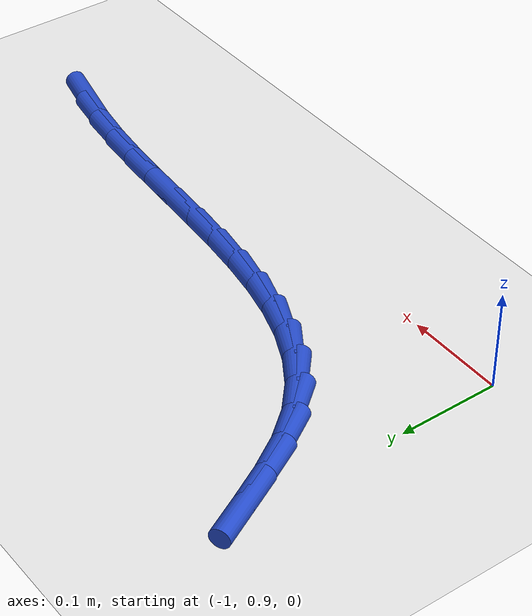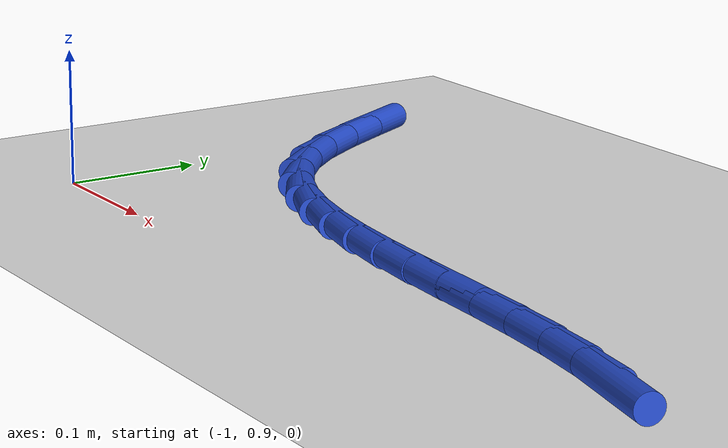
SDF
<sdf version="1.6">
 <world name="default">
  <model name="ground_plane">
   <static>1</static>
   <link name="link">
    <collision name="collision">
     <geometry><plane><normal>0 0 1</normal><size>100 100</size></plane></geometry>
     <surface><friction><ode><mu>100</mu><mu2>50</mu2></ode></friction></surface>
    </collision>
    <visual name="visual">
     <cast_shadows>0</cast_shadows>
     <geometry><plane><normal>0 0 1</normal><size>100 100</size></plane></geometry>
     <material>
      <script><uri>file://media/materials/scripts/gazebo.material</uri><name>Gazebo/WhiteGlow</name></script>
     </material>
    </visual>
   </link>
  </model>
  <model name="line">
   <link name="link_30">
    <pose>-0.4354034494841761 0.9488038067406316 0.01 0 1.57 -0.22563336026927192</pose>
    <collision name="collision">
     <geometry><cylinder><radius>0.01</radius><length>0.08</length></cylinder></geometry>
    </collision>
    <visual name="visual">
     <material>
      <script><name>Gazebo/Blue</name><uri>file://media/materials/scripts/gazebo.material</uri></script>
     </material>
     <geometry><cylinder><radius>0.01</radius><length>0.08</length></cylinder></geometry>
    </visual>
   </link>
   <link name="link_31">
    <pose>-0.4722766214476121 0.9572677485677066 0.01 0 1.57 -0.15825387505653035</pose>
    <collision name="collision">
     <geometry><cylinder><radius>0.01</radius><length>0.08</length></cylinder></geometry>
    </collision>
    <visual name="visual">
     <material>
      <script><name>Gazebo/Blue</name><uri>file://media/materials/scripts/gazebo.material</uri></script>
     </material>
     <geometry><cylinder><radius>0.01</radius><length>0.08</length></cylinder></geometry>
    </visual>
   </link>
   <link name="link_32">
    <pose>-0.5102413925524618 0.9633264842693678 0.01 0 1.57 -0.10903848361394776</pose>
    <collision name="collision">
     <geometry><cylinder><radius>0.01</radius><length>0.08</length></cylinder></geometry>
    </collision>
    <visual name="visual">
     <material>
      <script><name>Gazebo/Blue</name><uri>file://media/materials/scripts/gazebo.material</uri></script>
     </material>
     <geometry><cylinder><radius>0.01</radius><length>0.08</length></cylinder></geometry>
    </visual>
   </link>
   <link name="link_33">
    <pose>-0.5489769980985191 0.9675669749126167 0.01 0 1.57 -0.07676866494923182</pose>
    <collision name="collision">
     <geometry><cylinder><radius>0.01</radius><length>0.08</length></cylinder></geometry>
    </collision>
    <visual name="visual">
     <material>
      <script><name>Gazebo/Blue</name><uri>file://media/materials/scripts/gazebo.material</uri></script>
     </material>
     <geometry><cylinder><radius>0.01</radius><length>0.08</length></cylinder></geometry>
    </visual>
   </link>
   <link name="link_34">
    <pose>-0.588162324569635 0.9705811036225443 0.01 0 1.57 -0.06045566654952272</pose>
    <collision name="collision">
     <geometry><cylinder><radius>0.01</radius><length>0.08</length></cylinder></geometry>
    </collision>
    <visual name="visual">
     <material>
      <script><name>Gazebo/Blue</name><uri>file://media/materials/scripts/gazebo.material</uri></script>
     </material>
     <geometry><cylinder><radius>0.01</radius><length>0.08</length></cylinder></geometry>
    </visual>
   </link>
   <link name="link_35">
    <pose>-0.6274762584496614 0.9729607535242414 0.01 0 1.57 -0.05966755865339196</pose>
    <collision name="collision">
     <geometry><cylinder><radius>0.01</radius><length>0.08</length></cylinder></geometry>
    </collision>
    <visual name="visual">
     <material>
      <script><name>Gazebo/Blue</name><uri>file://media/materials/scripts/gazebo.material</uri></script>
     </material>
     <geometry><cylinder><radius>0.01</radius><length>0.08</length></cylinder></geometry>
    </visual>
   </link>
   <link name="link_36">
    <pose>-0.666597686222449 0.9752978077427991 0.01 0 1.57 -0.07462175058128107</pose>
    <collision name="collision">
     <geometry><cylinder><radius>0.01</radius><length>0.08</length></cylinder></geometry>
    </collision>
    <visual name="visual">
     <material>
      <script><name>Gazebo/Blue</name><uri>file://media/materials/scripts/gazebo.material</uri></script>
     </material>
     <geometry><cylinder><radius>0.01</radius><length>0.08</length></cylinder></geometry>
    </visual>
   </link>
   <link name="link_37">
    <pose>-0.7052054943718502 0.9781841494033086 0.01 0 1.57 -0.10622256811869774</pose>
    <collision name="collision">
     <geometry><cylinder><radius>0.01</radius><length>0.08</length></cylinder></geometry>
    </collision>
    <visual name="visual">
     <material>
      <script><name>Gazebo/Blue</name><uri>file://media/materials/scripts/gazebo.material</uri></script>
     </material>
     <geometry><cylinder><radius>0.01</radius><length>0.08</length></cylinder></geometry>
    </visual>
   </link>
   <link name="link_38">
    <pose>-0.7429785693817154 0.9822116616308608 0.01 0 1.57 -0.1560395663719989</pose>
    <collision name="collision">
     <geometry><cylinder><radius>0.01</radius><length>0.08</length></cylinder></geometry>
    </collision>
    <visual name="visual">
     <material>
      <script><name>Gazebo/Blue</name><uri>file://media/materials/scripts/gazebo.material</uri></script>
     </material>
     <geometry><cylinder><radius>0.01</radius><length>0.08</length></cylinder></geometry>
    </visual>
   </link>
   <link name="link_39">
    <pose>-0.779595797735896 0.9879722275505466 0.01 0 1.57 -0.22615598423063824</pose>
    <collision name="collision">
     <geometry><cylinder><radius>0.01</radius><length>0.08</length></cylinder></geometry>
    </collision>
    <visual name="visual">
     <material>
      <script><name>Gazebo/Blue</name><uri>file://media/materials/scripts/gazebo.material</uri></script>
     </material>
     <geometry><cylinder><radius>0.01</radius><length>0.08</length></cylinder></geometry>
    </visual>
   </link>
   <link name="link_40">
    <pose>-0.8147360659182442 0.996057730287457 0.01 0 1.57 -0.31873129166913367</pose>
    <collision name="collision">
     <geometry><cylinder><radius>0.01</radius><length>0.08</length></cylinder></geometry>
    </collision>
    <visual name="visual">
     <material>
      <script><name>Gazebo/Blue</name><uri>file://media/materials/scripts/gazebo.material</uri></script>
     </material>
     <geometry><cylinder><radius>0.01</radius><length>0.08</length></cylinder></geometry>
    </visual>
   </link>
   <link name="link_41">
    <pose>-0.8480782604126106 1.007060052966683 0.01 0 1.57 -0.43505560503989893</pose>
    <collision name="collision">
     <geometry><cylinder><radius>0.01</radius><length>0.08</length></cylinder></geometry>
    </collision>
    <visual name="visual">
     <material>
      <script><name>Gazebo/Blue</name><uri>file://media/materials/scripts/gazebo.material</uri></script>
     </material>
     <geometry><cylinder><radius>0.01</radius><length>0.08</length></cylinder></geometry>
    </visual>
   </link>
   <link name="link_42">
    <pose>-0.8793012677028467 1.0215710787133159 0.01 0 1.57 -0.5739988374188456</pose>
    <collision name="collision">
     <geometry><cylinder><radius>0.01</radius><length>0.08</length></cylinder></geometry>
    </collision>
    <visual name="visual">
     <material>
      <script><name>Gazebo/Blue</name><uri>file://media/materials/scripts/gazebo.material</uri></script>
     </material>
     <geometry><cylinder><radius>0.01</radius><length>0.08</length></cylinder></geometry>
    </visual>
   </link>
   <link name="link_43">
    <pose>-0.9080839742728042 1.0401826906524465 0.01 0 1.57 -0.7303662945092938</pose>
    <collision name="collision">
     <geometry><cylinder><radius>0.01</radius><length>0.08</length></cylinder></geometry>
    </collision>
    <visual name="visual">
     <material>
      <script><name>Gazebo/Blue</name><uri>file://media/materials/scripts/gazebo.material</uri></script>
     </material>
     <geometry><cylinder><radius>0.01</radius><length>0.08</length></cylinder></geometry>
    </visual>
   </link>
   <link name="link_44">
    <pose>-0.9341052666063341 1.0634867719091659 0.01 0 1.57 -0.8926601107316539</pose>
    <collision name="collision">
     <geometry><cylinder><radius>0.01</radius><length>0.08</length></cylinder></geometry>
    </collision>
    <visual name="visual">
     <material>
      <script><name>Gazebo/Blue</name><uri>file://media/materials/scripts/gazebo.material</uri></script>
     </material>
     <geometry><cylinder><radius>0.01</radius><length>0.08</length></cylinder></geometry>
    </visual>
   </link>
   <link name="link_45">
    <pose>-0.9570783934508018 1.092004149261729 0.01 0 1.57 -1.0175275707164992</pose>
    <collision name="collision">
     <geometry><cylinder><radius>0.01</radius><length>0.08</length></cylinder></geometry>
    </collision>
    <visual name="visual">
     <material>
      <script><name>Gazebo/Blue</name><uri>file://media/materials/scripts/gazebo.material</uri></script>
     </material>
     <geometry><cylinder><radius>0.01</radius><length>0.08</length></cylinder></geometry>
    </visual>
   </link>
   <link name="link_46">
    <pose>-0.9773823167017044 1.1248790479636468 0.01 0 1.57 -1.083480997667562</pose>
    <collision name="collision">
     <geometry><cylinder><radius>0.01</radius><length>0.08</length></cylinder></geometry>
    </collision>
    <visual name="visual">
     <material>
      <script><name>Gazebo/Blue</name><uri>file://media/materials/scripts/gazebo.material</uri></script>
     </material>
     <geometry><cylinder><radius>0.01</radius><length>0.08</length></cylinder></geometry>
    </visual>
   </link>
   <link name="link_47">
    <pose>-0.9959990588463544 1.1600086484526022 0.01 0 1.57 -1.1000188340280084</pose>
    <collision name="collision">
     <geometry><cylinder><radius>0.01</radius><length>0.08</length></cylinder></geometry>
    </collision>
    <visual name="visual">
     <material>
      <script><name>Gazebo/Blue</name><uri>file://media/materials/scripts/gazebo.material</uri></script>
     </material>
     <geometry><cylinder><radius>0.01</radius><length>0.08</length></cylinder></geometry>
    </visual>
   </link>
  </model>
 </world>
</sdf>
